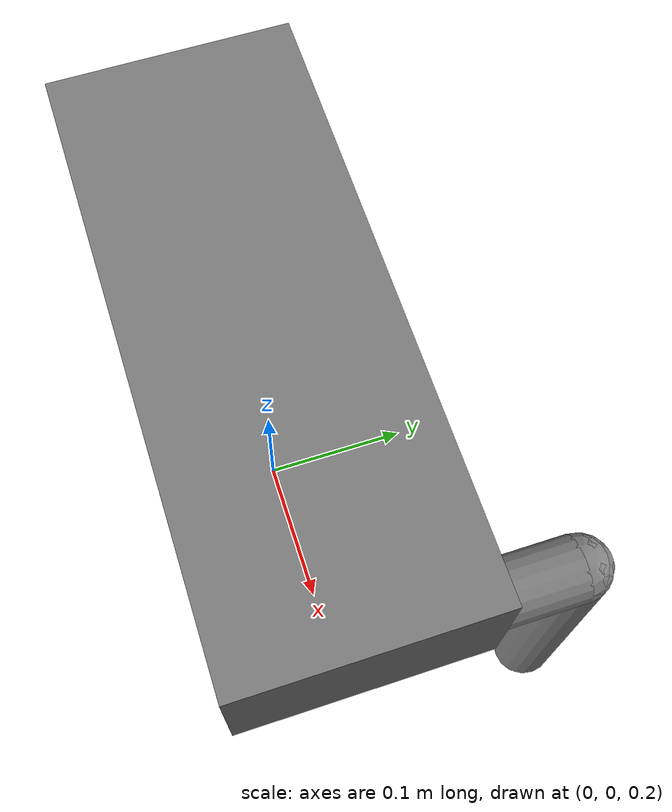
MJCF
<mujoco model="quadruped_shape">
  <compiler angle="radian"/>

  <default>
    <default class="robot">
      <joint damping="0.5" armature="0.01" range="-1.5 1.5"/>
      <geom type="capsule" size="0.02"/>
      <default class="abduction">
        <joint axis="1 0 0" range="-0.8 0.8"/>
      </default>
      <default class="knee">
        <joint axis="0 1 0" range="-2.7 -0.9"/>
      </default>
      <position class="robot" kp="60" kv="2" ctrlrange="-1.5 1.5"/>
    </default>
  </default>

  <worldbody>
    <body name="trunk" pos="0 0 0.4" childclass="robot">
      <freejoint name="root"/>
      <inertial pos="0 0 0" mass="5.0" diaginertia="0.05 0.2 0.2"/>
      <geom name="trunk_geom" type="box" size="0.2 0.08 0.05"/>

      <body name="fl_hip" pos="0.18 0.05 0">
        <inertial pos="0 0.02 0" mass="0.6" diaginertia="0.001 0.001 0.001"/>
        <joint name="fl_abduct" class="abduction"/>
        <geom name="fl_hip_geom" fromto="0 0 0 0 0.08 0"/>

        <body name="fl_knee_link" pos="0 0.08 0">
          <inertial pos="0 0 -0.1" mass="0.4" diaginertia="0.001 0.001 0.001"/>
          <joint name="fl_knee" class="knee"/>
          <geom name="fl_shank" fromto="0 0 0 0 0 -0.2"/>
        </body>
      </body>
    </body>
  </worldbody>

  <actuator>
    <position name="fl_abduct_act" joint="fl_abduct" class="robot"/>
    <position name="fl_knee_act" joint="fl_knee" class="robot" kp="120"/>
  </actuator>
</mujoco>
